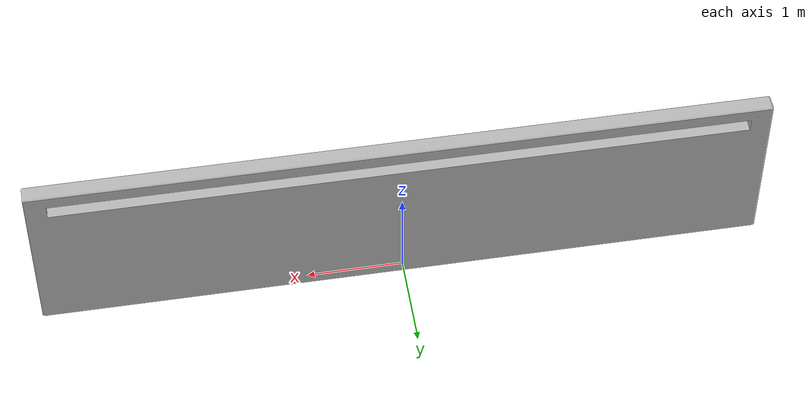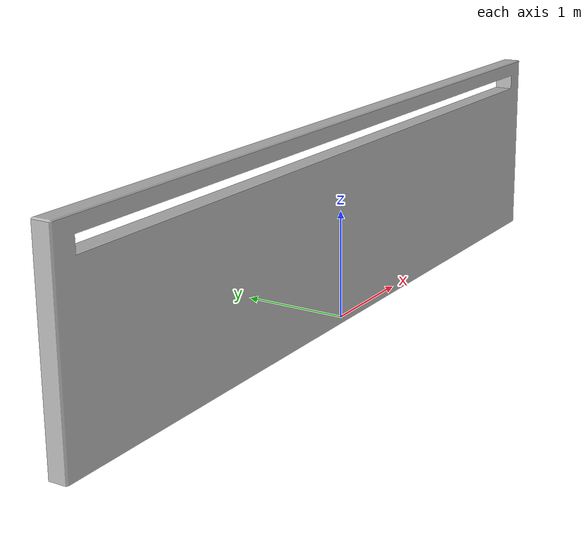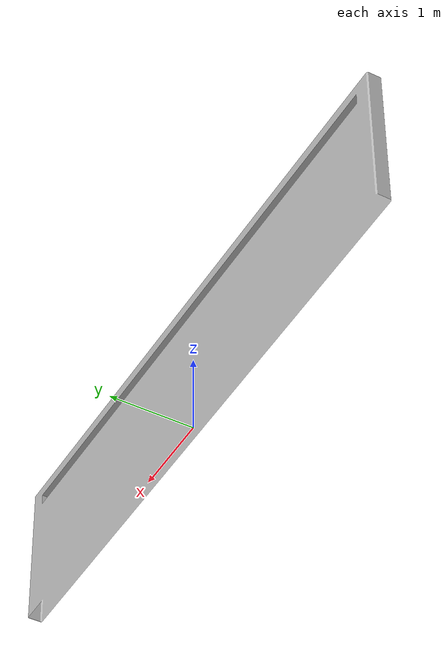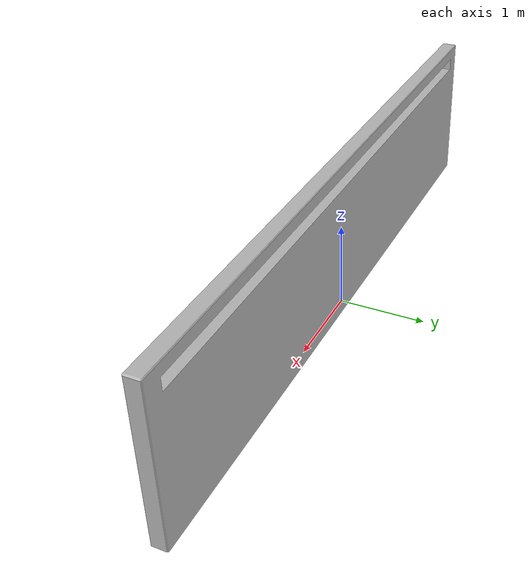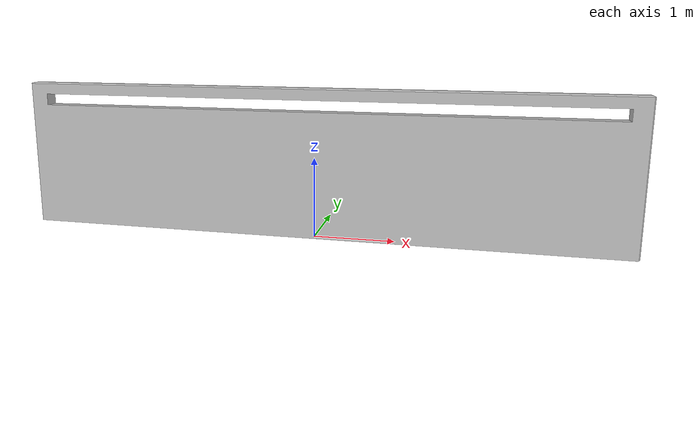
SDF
<?xml version="1.0" ?>
<sdf version="1.6">
  <model name="aws_robomaker_residential_RoomWall_01">
    <link name="link">
      <inertial>
        <mass>100</mass>
      </inertial>
      <collision name="collision">
        <geometry>
          <mesh>
            <uri>model://aws_robomaker_residential_RoomWall_01/meshes/aws_RoomWall_01_collision.DAE</uri>
            <scale>1.7 1.7 1</scale>
          </mesh>
        </geometry>
      </collision>
      <visual name="visual">
	    <geometry>
          <mesh>
            <uri>model://aws_robomaker_residential_RoomWall_01/meshes/aws_RoomWall_01_visual.DAE</uri>
            <scale>1.7 1.7 1</scale>
          </mesh>
        </geometry>
      <meta> <layer> 2 </layer></meta>
</visual>
    </link>
  <static>1</static>
  </model>
</sdf>
